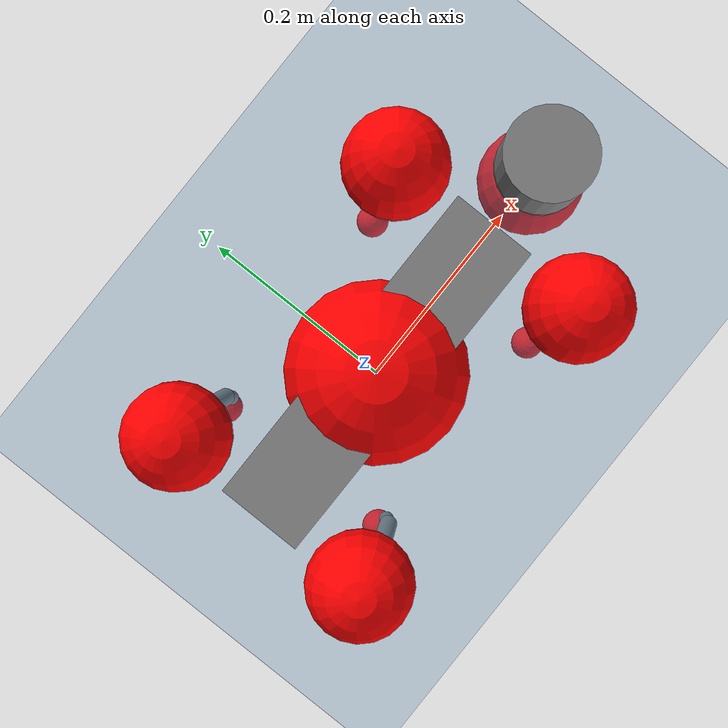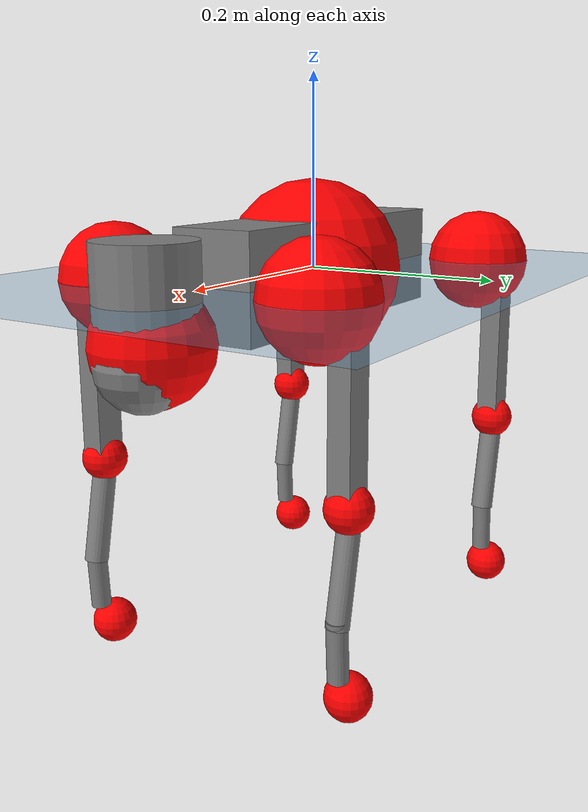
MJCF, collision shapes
<mujoco model="go2">
  <compiler angle="radian" assetdir="assets" balanceinertia="true" inertiafromgeom="false"/>

  <option timestep="0.005" density="1.2" viscosity="2e-05"/>

  <size nkey="1"/>

  <visual>
    <quality shadowsize="8192"/>
    <map shadowclip="0.5"/>
  </visual>

  <default>
    <default class="/">
      <geom contype="0" conaffinity="0" group="1" solref="-1000 -80"/>
      <site size="0.01 0.005 0.005" group="5"/>
      <general forcelimited="true" biastype="affine" gainprm="20" biasprm="0 -20 -0.5"/>
      <default class="go2">
        <joint armature="0.01" damping="0.01" frictionloss="0.2"/>
        <geom condim="1" margin="0.001"/>
        <default class="visual">
          <geom type="mesh" group="2"/>
        </default>
        <default class="collision">
          <geom group="3"/>
          <default class="foot">
            <geom size="0.022 0 0" condim="6" priority="1" friction="0.8 0.02 0.01" solimp="0.015 1 0.022"/>
          </default>
        </default>
        <default class="reward_collision_sphere">
          <geom group="5" rgba="1 0 0 1"/>
        </default>
      </default>
    </default>
  </default>

  <asset>
    <texture type="skybox" colorspace="auto" name="//unnamed_texture_0" builtin="gradient" rgb1="0.95 0.95 0.95" rgb2="0.95 0.95 0.95" width="100" height="600"/>
    <texture type="2d" colorspace="auto" name="texplane" builtin="checker" rgb1="0.345 0.575 0.748" rgb2="0.345 0.575 0.748" markrgb="1 1 1" width="512" height="512"/>
    <material name="MatPlane" class="/" texture="texplane" texuniform="true" texrepeat="2 2" specular="0.9"/>
    <material name="metal" class="/" rgba="0.9 0.95 0.95 1"/>
    <material name="black" class="/" rgba="0 0 0 1"/>
    <material name="white" class="/"/>
    <material name="gray" class="/" rgba="0.671705 0.692426 0.77427 1"/>
    <mesh name="base_0" class="/" file="base_0.obj"/>
    <mesh name="base_1" class="/" file="base_1.obj"/>
    <mesh name="base_2" class="/" file="base_2.obj"/>
    <mesh name="base_3" class="/" file="base_3.obj"/>
    <mesh name="base_4" class="/" file="base_4.obj"/>
    <mesh name="hip_0" class="/" file="hip_0.obj"/>
    <mesh name="hip_1" class="/" file="hip_1.obj"/>
    <mesh name="thigh_0" class="/" file="thigh_0.obj"/>
    <mesh name="thigh_1" class="/" file="thigh_1.obj"/>
    <mesh name="thigh_mirror_0" class="/" file="thigh_mirror_0.obj"/>
    <mesh name="thigh_mirror_1" class="/" file="thigh_mirror_1.obj"/>
    <mesh name="calf_0" class="/" file="calf_0.obj"/>
    <mesh name="calf_1" class="/" file="calf_1.obj"/>
    <mesh name="calf_mirror_0" class="/" file="calf_mirror_0.obj"/>
    <mesh name="calf_mirror_1" class="/" file="calf_mirror_1.obj"/>
    <mesh name="foot" class="/" file="foot.obj"/>
  </asset>

  <worldbody>
    <geom name="floor" class="/" size="100 100 0.125" type="plane" group="0" material="MatPlane"/>
    <light name="toplight_shadow" class="/" pos="0 0 5" dir="0.0990148 0.0990148 -0.990148" type="directional" ambient="0.04 0.04 0.04" diffuse="0.55 0.55 0.55" specular="0.12 0.12 0.12"/>
    <light name="toplight_fill" class="/" pos="0 0 5" dir="0.0990148 0.0990148 -0.990148" type="directional" castshadow="false" ambient="0.04 0.04 0.04" diffuse="0.3 0.3 0.3" specular="0.08 0.08 0.08"/>
    <body name="trunk" childclass="go2" pos="0.000502126 -0.00033188 0.000362349" quat="1 0.00032303 0.000201924 -0.000475982">
      <inertial pos="0.0170906 -0.0029929 -0.00565415" quat="-0.00360352 0.713 -0.00421477 0.701142" mass="5.72226" diaginertia="0.0680674 0.100064 0.0119934"/>
      <joint name="//unnamed_joint_0" type="free" armature="0" damping="0" frictionloss="0"/>
      <geom name="//unnamed_geom_1" class="visual" material="black" mesh="base_0"/>
      <geom name="//unnamed_geom_2" class="visual" material="black" mesh="base_1"/>
      <geom name="//unnamed_geom_3" class="visual" material="black" mesh="base_2"/>
      <geom name="//unnamed_geom_4" class="visual" material="white" mesh="base_3"/>
      <geom name="//unnamed_geom_5" class="visual" material="gray" mesh="base_4"/>
      <geom name="trunk_1" class="collision" size="0.174997 0.0434934 0.0530294" type="box"/>
      <geom name="trunk_2" class="collision" size="0.046517 0.0418653" pos="0.260692 0 0.00870069" type="cylinder"/>
      <geom name="trunk_3" class="collision" size="0.043726" pos="0.26801 0 -0.0522042"/>
      <geom name="//unnamed_geom_9" class="reward_collision_sphere" size="0.0930341"/>
      <geom name="//unnamed_geom_10" class="reward_collision_sphere" size="0.0558205" pos="0.256119 0 -0.0391531"/>
      <site name="imu" pos="-0.0103289 -6.59366e-05 0.023704" size="0.00930341"/>
      <camera name="track" pos="0 -2.01249 0" quat="0.707107 0.707107 0 0" mode="trackcom"/>
      <camera name="ego_camera" pos="0.28539 0 0.0391531" quat="-0.5 -0.5 0.5 0.5"/>
      <body name="FL_hip" pos="0.173419 0.0439096 -0.00238128" quat="1 0.000477374 -0.000140134 -0.000100738">
        <inertial pos="-0.00497314 -0.000474619 -2.86426e-05" quat="0.497162 0.499132 0.505286 0.498381" mass="0.543408" diaginertia="0.000555337 0.00057829 0.000232573"/>
        <joint name="FL_hip_joint" pos="0 0 0" axis="0.999946 -0.0103956 0.000289999" range="-1.04573 1.06731" armature="0.00943451" damping="0.015648" frictionloss="0.163069"/>
        <geom name="//unnamed_geom_11" class="visual" material="metal" mesh="hip_0"/>
        <geom name="//unnamed_geom_12" class="visual" material="gray" mesh="hip_1"/>
        <geom name="//unnamed_geom_13" class="collision" size="0.0427957 0.0186068" pos="0 0.0804995 0" quat="0.707107 0.707107 0 0" type="cylinder"/>
        <geom name="//unnamed_geom_14" class="reward_collision_sphere" size="0.0558205" pos="0 0.070437 0"/>
        <body name="FL_thigh" pos="-0.00285456 0.0979226 0.00257888" quat="0.999999 0.000237594 -0.00112984 -0.000615844">
          <inertial pos="-0.00366214 -0.0223719 -0.0264921" quat="0.828623 0.0801071 -0.0329839 0.553063" mass="0.904706" diaginertia="0.00383824 0.00590246 0.000441244"/>
          <joint name="FL_thigh_joint" pos="0 0 0" axis="-0.000596975 0.999999 0.00116406" stiffness="0.00917848" range="-1.51354 3.54058" armature="0.00955827" damping="0.0172861" frictionloss="0.167225"/>
          <geom name="//unnamed_geom_15" class="visual" material="metal" mesh="thigh_0"/>
          <geom name="//unnamed_geom_16" class="visual" material="gray" mesh="thigh_1"/>
          <geom name="//unnamed_geom_17" class="collision" size="0.0990813 0.0113967 0.0158158" pos="0 0 -0.0926624" quat="0.707107 0 0.707107 0" type="box"/>
          <body name="FL_calf" pos="0.00028147 0.0019144 -0.184893" quat="1 -0.000246135 -0.000326459 -2.50359e-05">
            <inertial pos="0.00545206 -0.0013636 -0.124283" quat="0.710354 0.00369327 -0.00616238 0.703808" mass="0.197152" diaginertia="0.00093273 0.00151479 2.65437e-05"/>
            <joint name="FL_calf_joint" pos="0 0 0" axis="-0.0147365 0.999855 0.00848604" range="-2.6751 -0.827744" armature="0.0094" damping="0.00218963" frictionloss="0.191062"/>
            <geom name="//unnamed_geom_18" class="visual" material="gray" mesh="calf_0"/>
            <geom name="//unnamed_geom_19" class="visual" material="black" mesh="calf_1"/>
            <geom name="FL_calf0" class="collision" size="0.0111641 0.0558205" pos="0.00731768 0 -0.0522042" quat="0.994493 0 -0.104807 0" type="cylinder"/>
            <geom name="//unnamed_geom_21" class="collision" size="0.0102337 0.0302361" pos="0.0182942 0 -0.12877" quat="0.999688 0 0.0249974 0" type="cylinder"/>
            <geom name="//unnamed_geom_22" class="visual" pos="0 0 -0.185325" quat="1 0 0 0" material="black" mesh="foot"/>
            <geom name="FL_foot" class="foot" size="0.0158254" pos="-0.00182942 0 -0.185325"/>
            <geom name="//unnamed_geom_24" class="reward_collision_sphere" size="0.0232585"/>
            <geom name="//unnamed_geom_25" class="reward_collision_sphere" size="0.0232585" pos="-0.00182942 0 -0.185325"/>
            <site name="FL_foot" class="foot" pos="-0.00182942 0 -0.185325" size="0.00930341"/>
          </body>
        </body>
      </body>
      <body name="FR_hip" pos="0.174685 -0.0461082 -0.000325178" quat="1 2.81636e-05 -0.000223466 -0.000225274">
        <inertial pos="-0.00700615 -0.00370161 -0.0028913" quat="0.504357 0.495954 0.501012 0.49864" mass="0.541981" diaginertia="0.000539093 0.000626718 0.000228085"/>
        <joint name="FR_hip_joint" pos="0 0 0" axis="0.999889 0.00427606 0.014268" stiffness="0.00171554" range="-1.07152 1.04441" armature="0.00949876" damping="0" frictionloss="0.191378"/>
        <geom name="//unnamed_geom_26" class="visual" pos="0 1.18629e-09 5.08825e-08" quat="4.63268e-05 1 0 0" material="metal" mesh="hip_0"/>
        <geom name="//unnamed_geom_27" class="visual" pos="0 1.92312e-09 -1.25852e-07" quat="4.63268e-05 1 0 0" material="gray" mesh="hip_1"/>
        <geom name="//unnamed_geom_28" class="collision" size="0.0427957 0.0186068" pos="0 -0.0804995 0" quat="0.707107 0.707107 0 0" type="cylinder"/>
        <geom name="//unnamed_geom_29" class="reward_collision_sphere" size="0.0558205" pos="0 -0.070437 0"/>
        <body name="FR_thigh" pos="0.00223664 -0.0983971 -0.00220154" quat="0.999999 0.000983532 -0.000878298 -5.71519e-06">
          <inertial pos="-0.000968926 0.0225314 -0.0304507" quat="0.552113 -0.0270107 0.0927669 0.828152" mass="0.971774" diaginertia="0.00374442 0.00588714 0.000458027"/>
          <joint name="FR_thigh_joint" pos="0 0 0" axis="0.000111906 -0.999994 0.00337506" range="-3.48503 1.58797" armature="0.00828699" damping="0.0150273" frictionloss="0.195615"/>
          <geom name="//unnamed_geom_30" class="visual" material="metal" mesh="thigh_mirror_0"/>
          <geom name="//unnamed_geom_31" class="visual" material="gray" mesh="thigh_mirror_1"/>
          <geom name="//unnamed_geom_32" class="collision" size="0.0990813 0.0113967 0.0158158" pos="0 0 -0.0926624" quat="0.707107 0 0.707107 0" type="box"/>
          <body name="FR_calf" pos="-0.00202711 -0.000720622 -0.18568" quat="0.999999 -0.000246404 0.00100026 0.000321636">
            <inertial pos="0.00294678 0.000805751 -0.123226" quat="0.697382 -0.00064851 0.00876529 0.716646" mass="0.206404" diaginertia="0.000998787 0.00153698 2.73964e-05"/>
            <joint name="FR_calf_joint" pos="0 0 0" axis="-0.00886047 -0.999959 -0.00208418" range="0.786239 2.67838" armature="0.0107408" damping="0.0200778" frictionloss="0.197738"/>
            <geom name="//unnamed_geom_33" class="visual" material="gray" mesh="calf_mirror_0"/>
            <geom name="//unnamed_geom_34" class="visual" material="black" mesh="calf_mirror_1"/>
            <geom name="FR_calf0" class="collision" size="0.0120944 0.0558205" pos="0.0091471 0 -0.0522042" quat="0.995004 0 -0.0998334 0" type="cylinder"/>
            <geom name="//unnamed_geom_36" class="collision" size="0.0102337 0.0302361" pos="0.0182942 0 -0.12877" quat="0.999688 0 0.0249974 0" type="cylinder"/>
            <geom name="//unnamed_geom_37" class="visual" pos="0 0 -0.185325" quat="1 0 0 0" material="black" mesh="foot"/>
            <geom name="FR_foot" class="foot" size="0.0201978" pos="-0.00182942 0 -0.185325"/>
            <geom name="//unnamed_geom_39" class="reward_collision_sphere" size="0.0232585"/>
            <geom name="//unnamed_geom_40" class="reward_collision_sphere" size="0.0232585" pos="-0.00182942 0 -0.185325"/>
            <site name="FR_foot" class="foot" pos="-0.00182942 0 -0.185325" size="0.00930341"/>
          </body>
        </body>
      </body>
      <body name="RL_hip" pos="-0.174049 0.0448915 -0.00293145" quat="1 -1.0119e-05 -7.71715e-06 -2.6339e-06">
        <inertial pos="0.00484715 0.00484386 -0.00126934" quat="0.504616 0.50382 0.485863 0.505436" mass="0.563631" diaginertia="0.00059792 0.00064067 0.000241163"/>
        <joint name="RL_hip_joint" pos="0 0 0" axis="-0.999982 0.00324829 0.00496662" range="-1.05912 1.04918" armature="0.00982685" damping="0" frictionloss="0.186085"/>
        <geom name="//unnamed_geom_41" class="visual" pos="-3.88892e-10 0 -7.62317e-08" quat="4.63268e-05 0 1 0" material="metal" mesh="hip_0"/>
        <geom name="//unnamed_geom_42" class="visual" pos="-6.3044e-10 0 -6.76067e-08" quat="4.63268e-05 0 1 0" material="gray" mesh="hip_1"/>
        <geom name="//unnamed_geom_43" class="collision" size="0.0427957 0.0186068" pos="0 0.0804995 0" quat="0.707107 0.707107 0 0" type="cylinder"/>
        <geom name="//unnamed_geom_44" class="reward_collision_sphere" size="0.0558205" pos="0 0.070437 0"/>
        <body name="RL_thigh" pos="0.000469378 0.0953685 0.00118242" quat="1 3.98211e-05 5.50524e-05 -0.000322746">
          <inertial pos="-0.00537425 -0.0217887 -0.0309721" quat="0.829149 0.0839916 -0.0218585 0.55225" mass="0.887414" diaginertia="0.00358312 0.00601895 0.000426943"/>
          <joint name="RL_thigh_joint" pos="0 0 0" axis="-0.00680303 0.99997 0.00367499" stiffness="0.0133197" range="-0.554328 4.4883" armature="0.00888318" damping="0" frictionloss="0.187028"/>
          <geom name="//unnamed_geom_45" class="visual" material="metal" mesh="thigh_0"/>
          <geom name="//unnamed_geom_46" class="visual" material="gray" mesh="thigh_1"/>
          <geom name="//unnamed_geom_47" class="collision" size="0.0990813 0.0113967 0.0158158" pos="0 0 -0.0926624" quat="0.707107 0 0.707107 0" type="box"/>
          <body name="RL_calf" pos="-0.00101184 0.000662383 -0.185845" quat="1 0.000308411 7.95276e-05 -3.79384e-05">
            <inertial pos="0.00732396 0.00219931 -0.123229" quat="0.717664 0.00456027 0.000559521 0.696375" mass="0.199087" diaginertia="0.000946975 0.00160083 2.71358e-05"/>
            <joint name="RL_calf_joint" pos="0 0 0" axis="0.00254375 0.999982 -0.00543544" stiffness="0.00690859" range="-2.66668 -0.888239" armature="0.0105476" damping="0.0180019" frictionloss="0.16013"/>
            <geom name="//unnamed_geom_48" class="visual" material="gray" mesh="calf_0"/>
            <geom name="//unnamed_geom_49" class="visual" material="black" mesh="calf_1"/>
            <geom name="RL_calf0" class="collision" size="0.0120944 0.0558205" pos="0.0091471 0 -0.0522042" quat="0.995004 0 -0.0998334 0" type="cylinder"/>
            <geom name="//unnamed_geom_51" class="collision" size="0.0102337 0.0302361" pos="0.0182942 0 -0.12877" quat="0.999688 0 0.0249974 0" type="cylinder"/>
            <geom name="//unnamed_geom_52" class="visual" pos="0 0 -0.185325" quat="1 0 0 0" material="black" mesh="foot"/>
            <geom name="RL_foot" class="foot" size="0.0184966" pos="-0.00182942 0 -0.185325"/>
            <geom name="//unnamed_geom_54" class="reward_collision_sphere" size="0.0232585"/>
            <geom name="//unnamed_geom_55" class="reward_collision_sphere" size="0.0232585" pos="-0.00182942 0 -0.185325"/>
            <site name="RL_foot" class="foot" pos="-0.00182942 0 -0.185325" size="0.00930341"/>
          </body>
        </body>
      </body>
      <body name="RR_hip" pos="-0.174881 -0.0482677 0.00142444" quat="1 0.000235932 -0.000409145 -0.00028298">
        <inertial pos="0.00274121 8.83372e-07 -0.00269266" quat="0.492661 0.498079 0.504847 0.504313" mass="0.549852" diaginertia="0.000548785 0.000602144 0.000233191"/>
        <joint name="RR_hip_joint" pos="0 0 0" axis="-0.999909 -0.00734708 0.0113166" range="-1.10131 1.08036" armature="0.00888826" damping="0" frictionloss="0.187198"/>
        <geom name="//unnamed_geom_56" class="visual" pos="3.92061e-10 1.18629e-09 -1.27114e-07" quat="2.14617e-09 4.63268e-05 4.63268e-05 -1" material="metal" mesh="hip_0"/>
        <geom name="//unnamed_geom_57" class="visual" pos="6.22602e-10 1.92312e-09 5.82452e-08" quat="2.14617e-09 4.63268e-05 4.63268e-05 -1" material="gray" mesh="hip_1"/>
        <geom name="//unnamed_geom_58" class="collision" size="0.0427957 0.0186068" pos="0 -0.0804995 0" quat="0.707107 0.707107 0 0" type="cylinder"/>
        <geom name="//unnamed_geom_59" class="reward_collision_sphere" size="0.0558205" pos="0 -0.070437 0"/>
        <body name="RR_thigh" pos="0.00241472 -0.0952186 -0.00154798" quat="0.999999 0.000175204 -0.0011181 0.000554823">
          <inertial pos="-0.00274003 0.0245985 -0.0291264" quat="0.550693 -0.0192322 0.085612 0.830083" mass="0.869965" diaginertia="0.00357239 0.00589421 0.000430872"/>
          <joint name="RR_thigh_joint" pos="0 0 0" axis="0.0010251 -0.999999 0.000443689" stiffness="0.00278204" range="-4.49496 0.52658" armature="0.00979426" damping="0.0193352" frictionloss="0.186412"/>
          <geom name="//unnamed_geom_60" class="visual" material="metal" mesh="thigh_mirror_0"/>
          <geom name="//unnamed_geom_61" class="visual" material="gray" mesh="thigh_mirror_1"/>
          <geom name="//unnamed_geom_62" class="collision" size="0.0990813 0.0113967 0.0158158" pos="0 0 -0.0926624" quat="0.707107 0 0.707107 0" type="box"/>
          <body name="RR_calf" pos="0.000680803 0.00216237 -0.185108" quat="0.999999 -0.000281383 0.000603674 0.00104858">
            <inertial pos="0.00835311 -0.000565522 -0.123636" quat="0.698258 -0.0160675 -0.000282986 0.715666" mass="0.197027" diaginertia="0.00092983 0.00151094 2.58826e-05"/>
            <joint name="RR_calf_joint" pos="0 0 0" axis="-0.000896163 -0.999978 0.00651271" range="0.828018 2.77909" armature="0.00927475" damping="0.020023" frictionloss="0.196903"/>
            <geom name="//unnamed_geom_63" class="visual" material="gray" mesh="calf_mirror_0"/>
            <geom name="//unnamed_geom_64" class="visual" material="black" mesh="calf_mirror_1"/>
            <geom name="RR_calf0" class="collision" size="0.0120944 0.0558205" pos="0.0091471 0 -0.0522042" quat="0.995004 0 -0.0998334 0" type="cylinder"/>
            <geom name="//unnamed_geom_66" class="collision" size="0.0102337 0.0302361" pos="0.0182942 0 -0.12877" quat="0.999688 0 0.0249974 0" type="cylinder"/>
            <geom name="//unnamed_geom_67" class="visual" pos="0 0 -0.185325" quat="1 0 0 0" material="black" mesh="foot"/>
            <geom name="RR_foot" class="foot" size="0.0191475" pos="-0.00182942 0 -0.185325"/>
            <geom name="//unnamed_geom_69" class="reward_collision_sphere" size="0.0232585"/>
            <geom name="//unnamed_geom_70" class="reward_collision_sphere" size="0.0232585" pos="-0.00182942 0 -0.185325"/>
            <site name="RR_foot" class="foot" pos="-0.00182942 0 -0.185325" size="0.00930341"/>
          </body>
        </body>
      </body>
    </body>
  </worldbody>

  <contact>
    <pair class="/" geom1="floor" geom2="FL_foot" name="//unnamed_contact_0"/>
    <pair class="/" geom1="floor" geom2="FR_foot" name="//unnamed_contact_1"/>
    <pair class="/" geom1="floor" geom2="RL_foot" name="//unnamed_contact_2"/>
    <pair class="/" geom1="floor" geom2="RR_foot" name="//unnamed_contact_3"/>
  </contact>

  <actuator>
    <general name="FL_hip" class="/" joint="FL_hip_joint" forcerange="-19.6959 19.6959" gainprm="17.7895" biasprm="0 -17.7895 -0.442312"/>
    <general name="FL_thigh" class="/" joint="FL_thigh_joint" forcerange="-20.0045 20.0045" gainprm="17.7895" biasprm="0 -17.7895 -0.442312"/>
    <general name="FL_calf" class="/" joint="FL_calf_joint" forcerange="-41.495 41.495" gainprm="17.7895" biasprm="0 -17.7895 -0.442312"/>
    <general name="FR_hip" class="/" joint="FR_hip_joint" forcerange="-22.3993 22.3993" gainprm="17.7895" biasprm="0 -17.7895 -0.442312"/>
    <general name="FR_thigh" class="/" joint="FR_thigh_joint" forcerange="-24.1736 24.1736" gainprm="17.7895" biasprm="0 -17.7895 -0.442312"/>
    <general name="FR_calf" class="/" joint="FR_calf_joint" forcerange="-43.5982 43.5982" gainprm="17.7895" biasprm="0 -17.7895 -0.442312"/>
    <general name="RL_hip" class="/" joint="RL_hip_joint" forcerange="-21.989 21.989" gainprm="17.7895" biasprm="0 -17.7895 -0.442312"/>
    <general name="RL_thigh" class="/" joint="RL_thigh_joint" forcerange="-19.8823 19.8823" gainprm="17.7895" biasprm="0 -17.7895 -0.442312"/>
    <general name="RL_calf" class="/" joint="RL_calf_joint" forcerange="-43.2041 43.2041" gainprm="17.7895" biasprm="0 -17.7895 -0.442312"/>
    <general name="RR_hip" class="/" joint="RR_hip_joint" forcerange="-22.9205 22.9205" gainprm="17.7895" biasprm="0 -17.7895 -0.442312"/>
    <general name="RR_thigh" class="/" joint="RR_thigh_joint" forcerange="-24.3486 24.3486" gainprm="17.7895" biasprm="0 -17.7895 -0.442312"/>
    <general name="RR_calf" class="/" joint="RR_calf_joint" forcerange="-41.4845 41.4845" gainprm="17.7895" biasprm="0 -17.7895 -0.442312"/>
  </actuator>

  <sensor>
    <gyro site="imu" name="imu_angular_velocity"/>
    <velocimeter site="imu" name="imu_linear_velocity"/>
    <framelinvel objtype="site" objname="FL_foot" name="FL_foot_global_linear_velocity"/>
    <framelinvel objtype="site" objname="FR_foot" name="FR_foot_global_linear_velocity"/>
    <framelinvel objtype="site" objname="RL_foot" name="RL_foot_global_linear_velocity"/>
    <framelinvel objtype="site" objname="RR_foot" name="RR_foot_global_linear_velocity"/>
  </sensor>

  <keyframe>
    <key name="home" qpos="0 0 0.325 1 0 0 0 0.1 0.8 -1.5 -0.1 -0.8 1.5 -0.1 0.8 -1.5 0.1 -0.8 1.5"/>
  </keyframe>
</mujoco>
